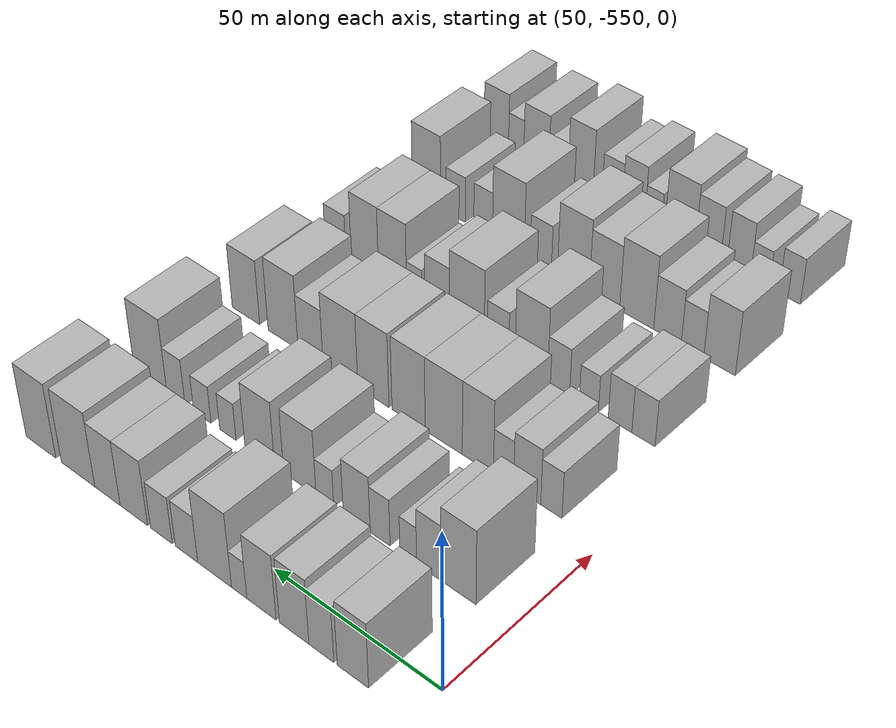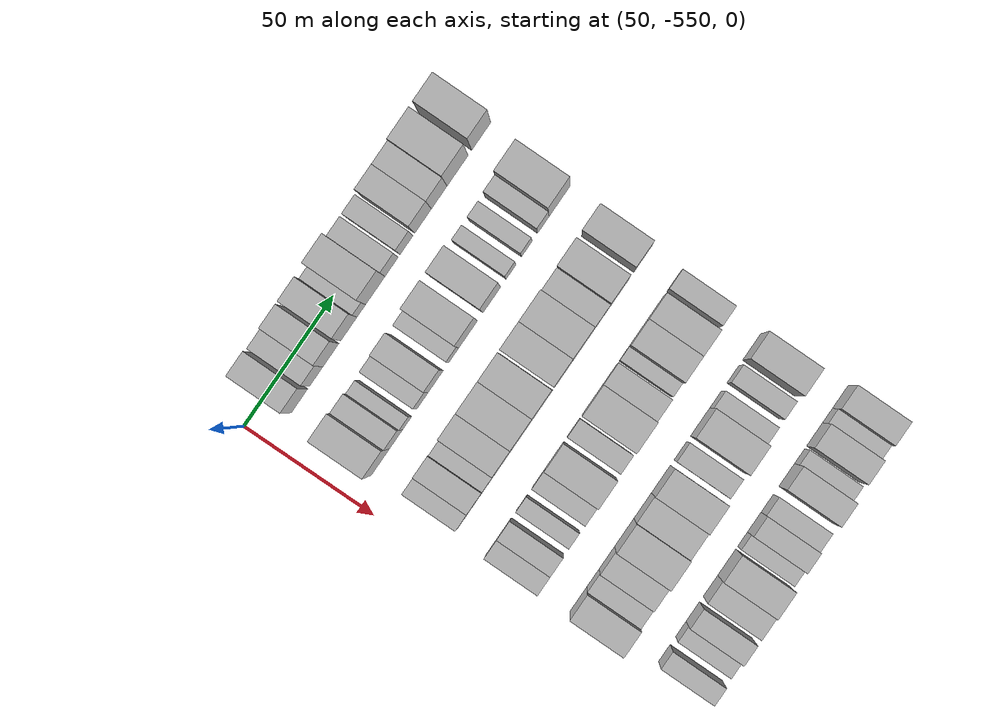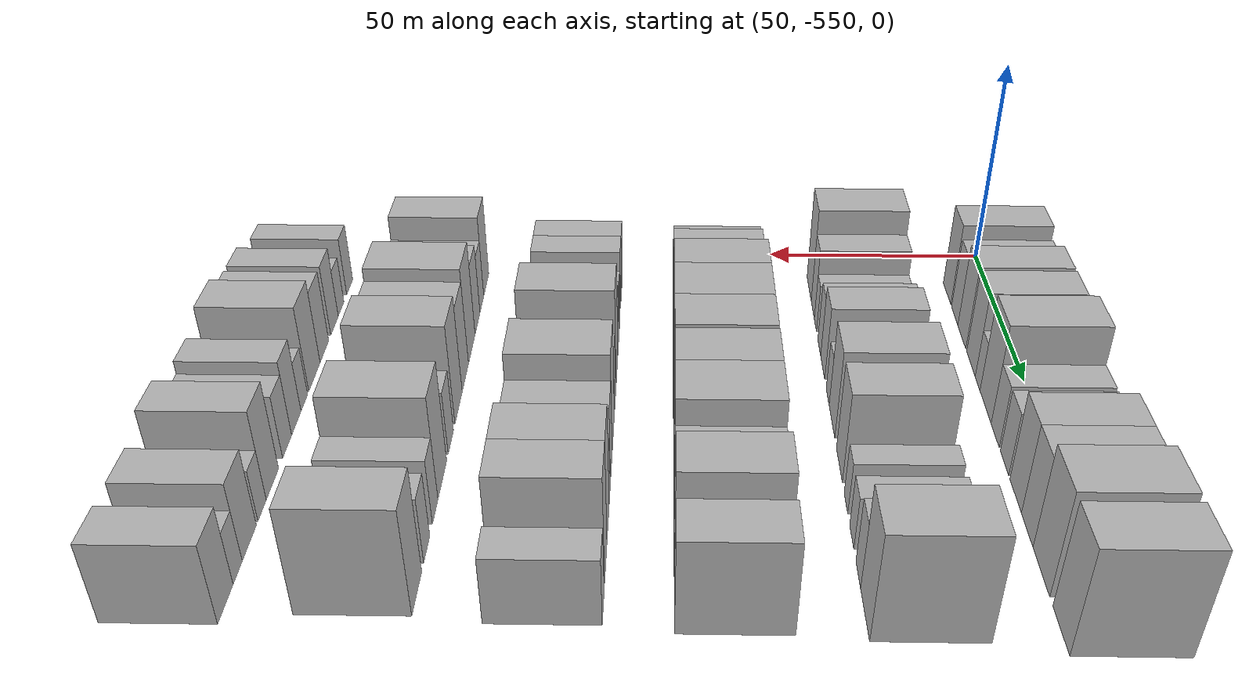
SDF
<sdf version="1.6">
 <world name="default">
  <model name="building_1">
   <static>1</static>
   <pose>50.0000 -533.4224 0 0.000000 0.000000 0.000000</pose>
   <link name="link">
    <pose>0 0 10.50 0 0 0</pose>
    <collision name="collision"><geometry><box><size>20.0000 9.1552 21.0000</size></box></geometry></collision>
    <visual name="visual">
     <cast_shadows>0</cast_shadows>
     <geometry><box><size>20.0000 9.1552 21.0000</size></box></geometry>
     <material>
      <script>
       <uri>model://HANNAS_wall/materials/scripts</uri>
       <uri>model://HANNAS_wall/materials/textures</uri>
       <name>vrc/HANNAS_wall</name>
      </script>
     </material>
    </visual>
   </link>
  </model>
  <model name="building_2">
   <static>1</static>
   <pose>50.0000 -524.1328 0 0.000000 0.000000 0.000000</pose>
   <link name="link">
    <pose>0 0 9.00 0 0 0</pose>
    <collision name="collision"><geometry><box><size>20.0000 7.4240 18.0000</size></box></geometry></collision>
    <visual name="visual">
     <cast_shadows>0</cast_shadows>
     <geometry><box><size>20.0000 7.4240 18.0000</size></box></geometry>
     <material>
      <script>
       <uri>model://HANNAS_wall/materials/scripts</uri>
       <uri>model://HANNAS_wall/materials/textures</uri>
       <name>vrc/HANNAS_wall</name>
      </script>
     </material>
    </visual>
   </link>
  </model>
  <model name="building_3">
   <static>1</static>
   <pose>50.0000 -515.9479 0 0.000000 0.000000 0.000000</pose>
   <link name="link">
    <pose>0 0 10.50 0 0 0</pose>
    <collision name="collision"><geometry><box><size>20.0000 8.9457 21.0000</size></box></geometry></collision>
    <visual name="visual">
     <cast_shadows>0</cast_shadows>
     <geometry><box><size>20.0000 8.9457 21.0000</size></box></geometry>
     <material>
      <script>
       <uri>model://HANNAS_wall/materials/scripts</uri>
       <uri>model://HANNAS_wall/materials/textures</uri>
       <name>vrc/HANNAS_wall</name>
      </script>
     </material>
    </visual>
   </link>
  </model>
  <model name="building_4">
   <static>1</static>
   <pose>50.0000 -505.9458 0 0.000000 0.000000 0.000000</pose>
   <link name="link">
    <pose>0 0 10.50 0 0 0</pose>
    <collision name="collision"><geometry><box><size>20.0000 9.0585 21.0000</size></box></geometry></collision>
    <visual name="visual">
     <cast_shadows>0</cast_shadows>
     <geometry><box><size>20.0000 9.0585 21.0000</size></box></geometry>
     <material>
      <script>
       <uri>model://HANNAS_wall/materials/scripts</uri>
       <uri>model://HANNAS_wall/materials/textures</uri>
       <name>vrc/HANNAS_wall</name>
      </script>
     </material>
    </visual>
   </link>
  </model>
  <model name="building_5">
   <static>1</static>
   <pose>50.0000 -499.0077 0 0.000000 0.000000 0.000000</pose>
   <link name="link">
    <pose>0 0 6.00 0 0 0</pose>
    <collision name="collision"><geometry><box><size>20.0000 4.8177 12.0000</size></box></geometry></collision>
    <visual name="visual">
     <cast_shadows>0</cast_shadows>
     <geometry><box><size>20.0000 4.8177 12.0000</size></box></geometry>
     <material>
      <script>
       <uri>model://HANNAS_wall/materials/scripts</uri>
       <uri>model://HANNAS_wall/materials/textures</uri>
       <name>vrc/HANNAS_wall</name>
      </script>
     </material>
    </visual>
   </link>
  </model>
  <model name="building_6">
   <static>1</static>
   <pose>50.0000 -491.1969 0 0.000000 0.000000 0.000000</pose>
   <link name="link">
    <pose>0 0 12.00 0 0 0</pose>
    <collision name="collision"><geometry><box><size>20.0000 10.8040 24.0000</size></box></geometry></collision>
    <visual name="visual">
     <cast_shadows>0</cast_shadows>
     <geometry><box><size>20.0000 10.8040 24.0000</size></box></geometry>
     <material>
      <script>
       <uri>model://HANNAS_wall/materials/scripts</uri>
       <uri>model://HANNAS_wall/materials/textures</uri>
       <name>vrc/HANNAS_wall</name>
      </script>
     </material>
    </visual>
   </link>
  </model>
  <model name="building_7">
   <static>1</static>
   <pose>50.0000 -482.1274 0 0.000000 0.000000 0.000000</pose>
   <link name="link">
    <pose>0 0 7.50 0 0 0</pose>
    <collision name="collision"><geometry><box><size>20.0000 7.3349 15.0000</size></box></geometry></collision>
    <visual name="visual">
     <cast_shadows>0</cast_shadows>
     <geometry><box><size>20.0000 7.3349 15.0000</size></box></geometry>
     <material>
      <script>
       <uri>model://HANNAS_wall/materials/scripts</uri>
       <uri>model://HANNAS_wall/materials/textures</uri>
       <name>vrc/HANNAS_wall</name>
      </script>
     </material>
    </visual>
   </link>
  </model>
  <model name="building_8">
   <static>1</static>
   <pose>50.0000 -473.8751 0 0.000000 0.000000 0.000000</pose>
   <link name="link">
    <pose>0 0 7.50 0 0 0</pose>
    <collision name="collision"><geometry><box><size>20.0000 7.1698 15.0000</size></box></geometry></collision>
    <visual name="visual">
     <cast_shadows>0</cast_shadows>
     <geometry><box><size>20.0000 7.1698 15.0000</size></box></geometry>
     <material>
      <script>
       <uri>model://HANNAS_wall/materials/scripts</uri>
       <uri>model://HANNAS_wall/materials/textures</uri>
       <name>vrc/HANNAS_wall</name>
      </script>
     </material>
    </visual>
   </link>
  </model>
  <model name="building_9">
   <static>1</static>
   <pose>50.0000 -464.6451 0 0.000000 0.000000 0.000000</pose>
   <link name="link">
    <pose>0 0 10.50 0 0 0</pose>
    <collision name="collision"><geometry><box><size>20.0000 9.2903 21.0000</size></box></geometry></collision>
    <visual name="visual">
     <cast_shadows>0</cast_shadows>
     <geometry><box><size>20.0000 9.2903 21.0000</size></box></geometry>
     <material>
      <script>
       <uri>model://HANNAS_wall/materials/scripts</uri>
       <uri>model://HANNAS_wall/materials/textures</uri>
       <name>vrc/HANNAS_wall</name>
      </script>
     </material>
    </visual>
   </link>
  </model>
  <model name="building_10">
   <static>1</static>
   <pose>50.0000 -455.6363 0 0.000000 0.000000 0.000000</pose>
   <link name="link">
    <pose>0 0 10.50 0 0 0</pose>
    <collision name="collision"><geometry><box><size>20.0000 8.7274 21.0000</size></box></geometry></collision>
    <visual name="visual">
     <cast_shadows>0</cast_shadows>
     <geometry><box><size>20.0000 8.7274 21.0000</size></box></geometry>
     <material>
      <script>
       <uri>model://HANNAS_wall/materials/scripts</uri>
       <uri>model://HANNAS_wall/materials/textures</uri>
       <name>vrc/HANNAS_wall</name>
      </script>
     </material>
    </visual>
   </link>
  </model>
  <model name="building_11">
   <static>1</static>
   <pose>50.0000 -445.4028 0 0.000000 0.000000 0.000000</pose>
   <link name="link">
    <pose>0 0 12.00 0 0 0</pose>
    <collision name="collision"><geometry><box><size>20.0000 11.7396 24.0000</size></box></geometry></collision>
    <visual name="visual">
     <cast_shadows>0</cast_shadows>
     <geometry><box><size>20.0000 11.7396 24.0000</size></box></geometry>
     <material>
      <script>
       <uri>model://HANNAS_wall/materials/scripts</uri>
       <uri>model://HANNAS_wall/materials/textures</uri>
       <name>vrc/HANNAS_wall</name>
      </script>
     </material>
    </visual>
   </link>
  </model>
  <model name="building_12">
   <static>1</static>
   <pose>50.0000 -432.2128 0 0.000000 0.000000 0.000000</pose>
   <link name="link">
    <pose>0 0 12.00 0 0 0</pose>
    <collision name="collision"><geometry><box><size>20.0000 10.6403 24.0000</size></box></geometry></collision>
    <visual name="visual">
     <cast_shadows>0</cast_shadows>
     <geometry><box><size>20.0000 10.6403 24.0000</size></box></geometry>
     <material>
      <script>
       <uri>model://HANNAS_wall/materials/scripts</uri>
       <uri>model://HANNAS_wall/materials/textures</uri>
       <name>vrc/HANNAS_wall</name>
      </script>
     </material>
    </visual>
   </link>
  </model>
  <model name="building_122">
   <static>1</static>
   <pose>82.0000 -534.8727 0 0.000000 0.000000 0.000000</pose>
   <link name="link">
    <pose>0 0 12.00 0 0 0</pose>
    <collision name="collision"><geometry><box><size>20.0000 10.2545 24.0000</size></box></geometry></collision>
    <visual name="visual">
     <cast_shadows>0</cast_shadows>
     <geometry><box><size>20.0000 10.2545 24.0000</size></box></geometry>
     <material>
      <script>
       <uri>model://HANNAS_wall/materials/scripts</uri>
       <uri>model://HANNAS_wall/materials/textures</uri>
       <name>vrc/HANNAS_wall</name>
      </script>
     </material>
    </visual>
   </link>
  </model>
  <model name="building_123">
   <static>1</static>
   <pose>82.0000 -526.1125 0 0.000000 0.000000 0.000000</pose>
   <link name="link">
    <pose>0 0 9.00 0 0 0</pose>
    <collision name="collision"><geometry><box><size>20.0000 7.2659 18.0000</size></box></geometry></collision>
    <visual name="visual">
     <cast_shadows>0</cast_shadows>
     <geometry><box><size>20.0000 7.2659 18.0000</size></box></geometry>
     <material>
      <script>
       <uri>model://HANNAS_wall/materials/scripts</uri>
       <uri>model://HANNAS_wall/materials/textures</uri>
       <name>vrc/HANNAS_wall</name>
      </script>
     </material>
    </visual>
   </link>
  </model>
  <model name="building_124">
   <static>1</static>
   <pose>82.0000 -519.9612 0 0.000000 0.000000 0.000000</pose>
   <link name="link">
    <pose>0 0 6.00 0 0 0</pose>
    <collision name="collision"><geometry><box><size>20.0000 5.0367 12.0000</size></box></geometry></collision>
    <visual name="visual">
     <cast_shadows>0</cast_shadows>
     <geometry><box><size>20.0000 5.0367 12.0000</size></box></geometry>
     <material>
      <script>
       <uri>model://HANNAS_wall/materials/scripts</uri>
       <uri>model://HANNAS_wall/materials/textures</uri>
       <name>vrc/HANNAS_wall</name>
      </script>
     </material>
    </visual>
   </link>
  </model>
  <model name="building_125">
   <static>1</static>
   <pose>82.0000 -511.3782 0 0.000000 0.000000 0.000000</pose>
   <link name="link">
    <pose>0 0 7.50 0 0 0</pose>
    <collision name="collision"><geometry><box><size>20.0000 6.1293 15.0000</size></box></geometry></collision>
    <visual name="visual">
     <cast_shadows>0</cast_shadows>
     <geometry><box><size>20.0000 6.1293 15.0000</size></box></geometry>
     <material>
      <script>
       <uri>model://HANNAS_wall/materials/scripts</uri>
       <uri>model://HANNAS_wall/materials/textures</uri>
       <name>vrc/HANNAS_wall</name>
      </script>
     </material>
    </visual>
   </link>
  </model>
  <model name="building_126">
   <static>1</static>
   <pose>82.0000 -504.1003 0 0.000000 0.000000 0.000000</pose>
   <link name="link">
    <pose>0 0 9.00 0 0 0</pose>
    <collision name="collision"><geometry><box><size>20.0000 8.4265 18.0000</size></box></geometry></collision>
    <visual name="visual">
     <cast_shadows>0</cast_shadows>
     <geometry><box><size>20.0000 8.4265 18.0000</size></box></geometry>
     <material>
      <script>
       <uri>model://HANNAS_wall/materials/scripts</uri>
       <uri>model://HANNAS_wall/materials/textures</uri>
       <name>vrc/HANNAS_wall</name>
      </script>
     </material>
    </visual>
   </link>
  </model>
  <model name="building_127">
   <static>1</static>
   <pose>82.0000 -494.0744 0 0.000000 0.000000 0.000000</pose>
   <link name="link">
    <pose>0 0 6.00 0 0 0</pose>
    <collision name="collision"><geometry><box><size>20.0000 5.6252 12.0000</size></box></geometry></collision>
    <visual name="visual">
     <cast_shadows>0</cast_shadows>
     <geometry><box><size>20.0000 5.6252 12.0000</size></box></geometry>
     <material>
      <script>
       <uri>model://HANNAS_wall/materials/scripts</uri>
       <uri>model://HANNAS_wall/materials/textures</uri>
       <name>vrc/HANNAS_wall</name>
      </script>
     </material>
    </visual>
   </link>
  </model>
  <model name="building_128">
   <static>1</static>
   <pose>82.0000 -486.0178 0 0.000000 0.000000 0.000000</pose>
   <link name="link">
    <pose>0 0 10.50 0 0 0</pose>
    <collision name="collision"><geometry><box><size>20.0000 10.4880 21.0000</size></box></geometry></collision>
    <visual name="visual">
     <cast_shadows>0</cast_shadows>
     <geometry><box><size>20.0000 10.4880 21.0000</size></box></geometry>
     <material>
      <script>
       <uri>model://HANNAS_wall/materials/scripts</uri>
       <uri>model://HANNAS_wall/materials/textures</uri>
       <name>vrc/HANNAS_wall</name>
      </script>
     </material>
    </visual>
   </link>
  </model>
  <model name="building_129">
   <static>1</static>
   <pose>82.0000 -472.8337 0 0.000000 0.000000 0.000000</pose>
   <link name="link">
    <pose>0 0 10.50 0 0 0</pose>
    <collision name="collision"><geometry><box><size>20.0000 9.8802 21.0000</size></box></geometry></collision>
    <visual name="visual">
     <cast_shadows>0</cast_shadows>
     <geometry><box><size>20.0000 9.8802 21.0000</size></box></geometry>
     <material>
      <script>
       <uri>model://HANNAS_wall/materials/scripts</uri>
       <uri>model://HANNAS_wall/materials/textures</uri>
       <name>vrc/HANNAS_wall</name>
      </script>
     </material>
    </visual>
   </link>
  </model>
  <model name="building_130">
   <static>1</static>
   <pose>82.0000 -462.1085 0 0.000000 0.000000 0.000000</pose>
   <link name="link">
    <pose>0 0 6.00 0 0 0</pose>
    <collision name="collision"><geometry><box><size>20.0000 5.5703 12.0000</size></box></geometry></collision>
    <visual name="visual">
     <cast_shadows>0</cast_shadows>
     <geometry><box><size>20.0000 5.5703 12.0000</size></box></geometry>
     <material>
      <script>
       <uri>model://HANNAS_wall/materials/scripts</uri>
       <uri>model://HANNAS_wall/materials/textures</uri>
       <name>vrc/HANNAS_wall</name>
      </script>
     </material>
    </visual>
   </link>
  </model>
  <model name="building_131">
   <static>1</static>
   <pose>82.0000 -453.3278 0 0.000000 0.000000 0.000000</pose>
   <link name="link">
    <pose>0 0 6.00 0 0 0</pose>
    <collision name="collision"><geometry><box><size>20.0000 5.9911 12.0000</size></box></geometry></collision>
    <visual name="visual">
     <cast_shadows>0</cast_shadows>
     <geometry><box><size>20.0000 5.9911 12.0000</size></box></geometry>
     <material>
      <script>
       <uri>model://HANNAS_wall/materials/scripts</uri>
       <uri>model://HANNAS_wall/materials/textures</uri>
       <name>vrc/HANNAS_wall</name>
      </script>
     </material>
    </visual>
   </link>
  </model>
  <model name="building_132">
   <static>1</static>
   <pose>82.0000 -444.1454 0 0.000000 0.000000 0.000000</pose>
   <link name="link">
    <pose>0 0 7.50 0 0 0</pose>
    <collision name="collision"><geometry><box><size>20.0000 6.3737 15.0000</size></box></geometry></collision>
    <visual name="visual">
     <cast_shadows>0</cast_shadows>
     <geometry><box><size>20.0000 6.3737 15.0000</size></box></geometry>
     <material>
      <script>
       <uri>model://HANNAS_wall/materials/scripts</uri>
       <uri>model://HANNAS_wall/materials/textures</uri>
       <name>vrc/HANNAS_wall</name>
      </script>
     </material>
    </visual>
   </link>
  </model>
  <model name="building_133">
   <static>1</static>
   <pose>82.0000 -435.1481 0 0.000000 0.000000 0.000000</pose>
   <link name="link">
    <pose>0 0 12.00 0 0 0</pose>
    <collision name="collision"><geometry><box><size>20.0000 11.6207 24.0000</size></box></geometry></collision>
    <visual name="visual">
     <cast_shadows>0</cast_shadows>
     <geometry><box><size>20.0000 11.6207 24.0000</size></box></geometry>
     <material>
      <script>
       <uri>model://HANNAS_wall/materials/scripts</uri>
       <uri>model://HANNAS_wall/materials/textures</uri>
       <name>vrc/HANNAS_wall</name>
      </script>
     </material>
    </visual>
   </link>
  </model>
  <model name="building_242">
   <static>1</static>
   <pose>114.0000 -534.8500 0 0.000000 0.000000 0.000000</pose>
   <link name="link">
    <pose>0 0 7.50 0 0 0</pose>
    <collision name="collision"><geometry><box><size>20.0000 6.3000 15.0000</size></box></geometry></collision>
    <visual name="visual">
     <cast_shadows>0</cast_shadows>
     <geometry><box><size>20.0000 6.3000 15.0000</size></box></geometry>
     <material>
      <script>
       <uri>model://HANNAS_wall/materials/scripts</uri>
       <uri>model://HANNAS_wall/materials/textures</uri>
       <name>vrc/HANNAS_wall</name>
      </script>
     </material>
    </visual>
   </link>
  </model>
  <model name="building_243">
   <static>1</static>
   <pose>114.0000 -527.6323 0 0.000000 0.000000 0.000000</pose>
   <link name="link">
    <pose>0 0 9.00 0 0 0</pose>
    <collision name="collision"><geometry><box><size>20.0000 8.1355 18.0000</size></box></geometry></collision>
    <visual name="visual">
     <cast_shadows>0</cast_shadows>
     <geometry><box><size>20.0000 8.1355 18.0000</size></box></geometry>
     <material>
      <script>
       <uri>model://HANNAS_wall/materials/scripts</uri>
       <uri>model://HANNAS_wall/materials/textures</uri>
       <name>vrc/HANNAS_wall</name>
      </script>
     </material>
    </visual>
   </link>
  </model>
  <model name="building_244">
   <static>1</static>
   <pose>114.0000 -520.5012 0 0.000000 0.000000 0.000000</pose>
   <link name="link">
    <pose>0 0 7.50 0 0 0</pose>
    <collision name="collision"><geometry><box><size>20.0000 6.1267 15.0000</size></box></geometry></collision>
    <visual name="visual">
     <cast_shadows>0</cast_shadows>
     <geometry><box><size>20.0000 6.1267 15.0000</size></box></geometry>
     <material>
      <script>
       <uri>model://HANNAS_wall/materials/scripts</uri>
       <uri>model://HANNAS_wall/materials/textures</uri>
       <name>vrc/HANNAS_wall</name>
      </script>
     </material>
    </visual>
   </link>
  </model>
  <model name="building_245">
   <static>1</static>
   <pose>114.0000 -512.6244 0 0.000000 0.000000 0.000000</pose>
   <link name="link">
    <pose>0 0 12.00 0 0 0</pose>
    <collision name="collision"><geometry><box><size>20.0000 9.6268 24.0000</size></box></geometry></collision>
    <visual name="visual">
     <cast_shadows>0</cast_shadows>
     <geometry><box><size>20.0000 9.6268 24.0000</size></box></geometry>
     <material>
      <script>
       <uri>model://HANNAS_wall/materials/scripts</uri>
       <uri>model://HANNAS_wall/materials/textures</uri>
       <name>vrc/HANNAS_wall</name>
      </script>
     </material>
    </visual>
   </link>
  </model>
  <model name="building_246">
   <static>1</static>
   <pose>114.0000 -501.9452 0 0.000000 0.000000 0.000000</pose>
   <link name="link">
    <pose>0 0 12.00 0 0 0</pose>
    <collision name="collision"><geometry><box><size>20.0000 11.7315 24.0000</size></box></geometry></collision>
    <visual name="visual">
     <cast_shadows>0</cast_shadows>
     <geometry><box><size>20.0000 11.7315 24.0000</size></box></geometry>
     <material>
      <script>
       <uri>model://HANNAS_wall/materials/scripts</uri>
       <uri>model://HANNAS_wall/materials/textures</uri>
       <name>vrc/HANNAS_wall</name>
      </script>
     </material>
    </visual>
   </link>
  </model>
  <model name="building_247">
   <static>1</static>
   <pose>114.0000 -490.7230 0 0.000000 0.000000 0.000000</pose>
   <link name="link">
    <pose>0 0 12.00 0 0 0</pose>
    <collision name="collision"><geometry><box><size>20.0000 10.7128 24.0000</size></box></geometry></collision>
    <visual name="visual">
     <cast_shadows>0</cast_shadows>
     <geometry><box><size>20.0000 10.7128 24.0000</size></box></geometry>
     <material>
      <script>
       <uri>model://HANNAS_wall/materials/scripts</uri>
       <uri>model://HANNAS_wall/materials/textures</uri>
       <name>vrc/HANNAS_wall</name>
      </script>
     </material>
    </visual>
   </link>
  </model>
  <model name="building_248">
   <static>1</static>
   <pose>114.0000 -479.2172 0 0.000000 0.000000 0.000000</pose>
   <link name="link">
    <pose>0 0 12.00 0 0 0</pose>
    <collision name="collision"><geometry><box><size>20.0000 10.2990 24.0000</size></box></geometry></collision>
    <visual name="visual">
     <cast_shadows>0</cast_shadows>
     <geometry><box><size>20.0000 10.2990 24.0000</size></box></geometry>
     <material>
      <script>
       <uri>model://HANNAS_wall/materials/scripts</uri>
       <uri>model://HANNAS_wall/materials/textures</uri>
       <name>vrc/HANNAS_wall</name>
      </script>
     </material>
    </visual>
   </link>
  </model>
  <model name="building_249">
   <static>1</static>
   <pose>114.0000 -468.2061 0 0.000000 0.000000 0.000000</pose>
   <link name="link">
    <pose>0 0 12.00 0 0 0</pose>
    <collision name="collision"><geometry><box><size>20.0000 11.7231 24.0000</size></box></geometry></collision>
    <visual name="visual">
     <cast_shadows>0</cast_shadows>
     <geometry><box><size>20.0000 11.7231 24.0000</size></box></geometry>
     <material>
      <script>
       <uri>model://HANNAS_wall/materials/scripts</uri>
       <uri>model://HANNAS_wall/materials/textures</uri>
       <name>vrc/HANNAS_wall</name>
      </script>
     </material>
    </visual>
   </link>
  </model>
  <model name="building_250">
   <static>1</static>
   <pose>114.0000 -458.0367 0 0.000000 0.000000 0.000000</pose>
   <link name="link">
    <pose>0 0 9.00 0 0 0</pose>
    <collision name="collision"><geometry><box><size>20.0000 8.6156 18.0000</size></box></geometry></collision>
    <visual name="visual">
     <cast_shadows>0</cast_shadows>
     <geometry><box><size>20.0000 8.6156 18.0000</size></box></geometry>
     <material>
      <script>
       <uri>model://HANNAS_wall/materials/scripts</uri>
       <uri>model://HANNAS_wall/materials/textures</uri>
       <name>vrc/HANNAS_wall</name>
      </script>
     </material>
    </visual>
   </link>
  </model>
  <model name="building_251">
   <static>1</static>
   <pose>114.0000 -448.4883 0 0.000000 0.000000 0.000000</pose>
   <link name="link">
    <pose>0 0 12.00 0 0 0</pose>
    <collision name="collision"><geometry><box><size>20.0000 10.4812 24.0000</size></box></geometry></collision>
    <visual name="visual">
     <cast_shadows>0</cast_shadows>
     <geometry><box><size>20.0000 10.4812 24.0000</size></box></geometry>
     <material>
      <script>
       <uri>model://HANNAS_wall/materials/scripts</uri>
       <uri>model://HANNAS_wall/materials/textures</uri>
       <name>vrc/HANNAS_wall</name>
      </script>
     </material>
    </visual>
   </link>
  </model>
  <model name="building_252">
   <static>1</static>
   <pose>114.0000 -435.3264 0 0.000000 0.000000 0.000000</pose>
   <link name="link">
    <pose>0 0 10.50 0 0 0</pose>
    <collision name="collision"><geometry><box><size>20.0000 9.8426 21.0000</size></box></geometry></collision>
    <visual name="visual">
     <cast_shadows>0</cast_shadows>
     <geometry><box><size>20.0000 9.8426 21.0000</size></box></geometry>
     <material>
      <script>
       <uri>model://HANNAS_wall/materials/scripts</uri>
       <uri>model://HANNAS_wall/materials/textures</uri>
       <name>vrc/HANNAS_wall</name>
      </script>
     </material>
    </visual>
   </link>
  </model>
  <model name="building_360">
   <static>1</static>
   <pose>146.0000 -536.5453 0 0.000000 0.000000 0.000000</pose>
   <link name="link">
    <pose>0 0 7.50 0 0 0</pose>
    <collision name="collision"><geometry><box><size>20.0000 6.9094 15.0000</size></box></geometry></collision>
    <visual name="visual">
     <cast_shadows>0</cast_shadows>
     <geometry><box><size>20.0000 6.9094 15.0000</size></box></geometry>
     <material>
      <script>
       <uri>model://HANNAS_wall/materials/scripts</uri>
       <uri>model://HANNAS_wall/materials/textures</uri>
       <name>vrc/HANNAS_wall</name>
      </script>
     </material>
    </visual>
   </link>
  </model>
  <model name="building_361">
   <static>1</static>
   <pose>146.0000 -529.5158 0 0.000000 0.000000 0.000000</pose>
   <link name="link">
    <pose>0 0 7.50 0 0 0</pose>
    <collision name="collision"><geometry><box><size>20.0000 7.1495 15.0000</size></box></geometry></collision>
    <visual name="visual">
     <cast_shadows>0</cast_shadows>
     <geometry><box><size>20.0000 7.1495 15.0000</size></box></geometry>
     <material>
      <script>
       <uri>model://HANNAS_wall/materials/scripts</uri>
       <uri>model://HANNAS_wall/materials/textures</uri>
       <name>vrc/HANNAS_wall</name>
      </script>
     </material>
    </visual>
   </link>
  </model>
  <model name="building_362">
   <static>1</static>
   <pose>146.0000 -520.0100 0 0.000000 0.000000 0.000000</pose>
   <link name="link">
    <pose>0 0 6.00 0 0 0</pose>
    <collision name="collision"><geometry><box><size>20.0000 5.8622 12.0000</size></box></geometry></collision>
    <visual name="visual">
     <cast_shadows>0</cast_shadows>
     <geometry><box><size>20.0000 5.8622 12.0000</size></box></geometry>
     <material>
      <script>
       <uri>model://HANNAS_wall/materials/scripts</uri>
       <uri>model://HANNAS_wall/materials/textures</uri>
       <name>vrc/HANNAS_wall</name>
      </script>
     </material>
    </visual>
   </link>
  </model>
  <model name="building_363">
   <static>1</static>
   <pose>146.0000 -510.6167 0 0.000000 0.000000 0.000000</pose>
   <link name="link">
    <pose>0 0 7.50 0 0 0</pose>
    <collision name="collision"><geometry><box><size>20.0000 6.9243 15.0000</size></box></geometry></collision>
    <visual name="visual">
     <cast_shadows>0</cast_shadows>
     <geometry><box><size>20.0000 6.9243 15.0000</size></box></geometry>
     <material>
      <script>
       <uri>model://HANNAS_wall/materials/scripts</uri>
       <uri>model://HANNAS_wall/materials/textures</uri>
       <name>vrc/HANNAS_wall</name>
      </script>
     </material>
    </visual>
   </link>
  </model>
  <model name="building_364">
   <static>1</static>
   <pose>146.0000 -501.9515 0 0.000000 0.000000 0.000000</pose>
   <link name="link">
    <pose>0 0 12.00 0 0 0</pose>
    <collision name="collision"><geometry><box><size>20.0000 10.4060 24.0000</size></box></geometry></collision>
    <visual name="visual">
     <cast_shadows>0</cast_shadows>
     <geometry><box><size>20.0000 10.4060 24.0000</size></box></geometry>
     <material>
      <script>
       <uri>model://HANNAS_wall/materials/scripts</uri>
       <uri>model://HANNAS_wall/materials/textures</uri>
       <name>vrc/HANNAS_wall</name>
      </script>
     </material>
    </visual>
   </link>
  </model>
  <model name="building_365">
   <static>1</static>
   <pose>146.0000 -491.2562 0 0.000000 0.000000 0.000000</pose>
   <link name="link">
    <pose>0 0 7.50 0 0 0</pose>
    <collision name="collision"><geometry><box><size>20.0000 6.9847 15.0000</size></box></geometry></collision>
    <visual name="visual">
     <cast_shadows>0</cast_shadows>
     <geometry><box><size>20.0000 6.9847 15.0000</size></box></geometry>
     <material>
      <script>
       <uri>model://HANNAS_wall/materials/scripts</uri>
       <uri>model://HANNAS_wall/materials/textures</uri>
       <name>vrc/HANNAS_wall</name>
      </script>
     </material>
    </visual>
   </link>
  </model>
  <model name="building_366">
   <static>1</static>
   <pose>146.0000 -480.9899 0 0.000000 0.000000 0.000000</pose>
   <link name="link">
    <pose>0 0 12.00 0 0 0</pose>
    <collision name="collision"><geometry><box><size>20.0000 11.5481 24.0000</size></box></geometry></collision>
    <visual name="visual">
     <cast_shadows>0</cast_shadows>
     <geometry><box><size>20.0000 11.5481 24.0000</size></box></geometry>
     <material>
      <script>
       <uri>model://HANNAS_wall/materials/scripts</uri>
       <uri>model://HANNAS_wall/materials/textures</uri>
       <name>vrc/HANNAS_wall</name>
      </script>
     </material>
    </visual>
   </link>
  </model>
  <model name="building_367">
   <static>1</static>
   <pose>146.0000 -471.0861 0 0.000000 0.000000 0.000000</pose>
   <link name="link">
    <pose>0 0 9.00 0 0 0</pose>
    <collision name="collision"><geometry><box><size>20.0000 8.2594 18.0000</size></box></geometry></collision>
    <visual name="visual">
     <cast_shadows>0</cast_shadows>
     <geometry><box><size>20.0000 8.2594 18.0000</size></box></geometry>
     <material>
      <script>
       <uri>model://HANNAS_wall/materials/scripts</uri>
       <uri>model://HANNAS_wall/materials/textures</uri>
       <name>vrc/HANNAS_wall</name>
      </script>
     </material>
    </visual>
   </link>
  </model>
  <model name="building_368">
   <static>1</static>
   <pose>146.0000 -463.3602 0 0.000000 0.000000 0.000000</pose>
   <link name="link">
    <pose>0 0 6.00 0 0 0</pose>
    <collision name="collision"><geometry><box><size>20.0000 5.1926 12.0000</size></box></geometry></collision>
    <visual name="visual">
     <cast_shadows>0</cast_shadows>
     <geometry><box><size>20.0000 5.1926 12.0000</size></box></geometry>
     <material>
      <script>
       <uri>model://HANNAS_wall/materials/scripts</uri>
       <uri>model://HANNAS_wall/materials/textures</uri>
       <name>vrc/HANNAS_wall</name>
      </script>
     </material>
    </visual>
   </link>
  </model>
  <model name="building_369">
   <static>1</static>
   <pose>146.0000 -455.9004 0 0.000000 0.000000 0.000000</pose>
   <link name="link">
    <pose>0 0 12.00 0 0 0</pose>
    <collision name="collision"><geometry><box><size>20.0000 9.7270 24.0000</size></box></geometry></collision>
    <visual name="visual">
     <cast_shadows>0</cast_shadows>
     <geometry><box><size>20.0000 9.7270 24.0000</size></box></geometry>
     <material>
      <script>
       <uri>model://HANNAS_wall/materials/scripts</uri>
       <uri>model://HANNAS_wall/materials/textures</uri>
       <name>vrc/HANNAS_wall</name>
      </script>
     </material>
    </visual>
   </link>
  </model>
  <model name="building_370">
   <static>1</static>
   <pose>146.0000 -446.2291 0 0.000000 0.000000 0.000000</pose>
   <link name="link">
    <pose>0 0 12.00 0 0 0</pose>
    <collision name="collision"><geometry><box><size>20.0000 9.6155 24.0000</size></box></geometry></collision>
    <visual name="visual">
     <cast_shadows>0</cast_shadows>
     <geometry><box><size>20.0000 9.6155 24.0000</size></box></geometry>
     <material>
      <script>
       <uri>model://HANNAS_wall/materials/scripts</uri>
       <uri>model://HANNAS_wall/materials/textures</uri>
       <name>vrc/HANNAS_wall</name>
      </script>
     </material>
    </visual>
   </link>
  </model>
  <model name="building_371">
   <static>1</static>
   <pose>146.0000 -435.7309 0 0.000000 0.000000 0.000000</pose>
   <link name="link">
    <pose>0 0 7.50 0 0 0</pose>
    <collision name="collision"><geometry><box><size>20.0000 7.3810 15.0000</size></box></geometry></collision>
    <visual name="visual">
     <cast_shadows>0</cast_shadows>
     <geometry><box><size>20.0000 7.3810 15.0000</size></box></geometry>
     <material>
      <script>
       <uri>model://HANNAS_wall/materials/scripts</uri>
       <uri>model://HANNAS_wall/materials/textures</uri>
       <name>vrc/HANNAS_wall</name>
      </script>
     </material>
    </visual>
   </link>
  </model>
  <model name="building_465">
   <static>1</static>
   <pose>178.0000 -535.2208 0 0.000000 0.000000 0.000000</pose>
   <link name="link">
    <pose>0 0 10.50 0 0 0</pose>
    <collision name="collision"><geometry><box><size>20.0000 9.5584 21.0000</size></box></geometry></collision>
    <visual name="visual">
     <cast_shadows>0</cast_shadows>
     <geometry><box><size>20.0000 9.5584 21.0000</size></box></geometry>
     <material>
      <script>
       <uri>model://HANNAS_wall/materials/scripts</uri>
       <uri>model://HANNAS_wall/materials/textures</uri>
       <name>vrc/HANNAS_wall</name>
      </script>
     </material>
    </visual>
   </link>
  </model>
  <model name="building_466">
   <static>1</static>
   <pose>178.0000 -526.9873 0 0.000000 0.000000 0.000000</pose>
   <link name="link">
    <pose>0 0 7.50 0 0 0</pose>
    <collision name="collision"><geometry><box><size>20.0000 6.9086 15.0000</size></box></geometry></collision>
    <visual name="visual">
     <cast_shadows>0</cast_shadows>
     <geometry><box><size>20.0000 6.9086 15.0000</size></box></geometry>
     <material>
      <script>
       <uri>model://HANNAS_wall/materials/scripts</uri>
       <uri>model://HANNAS_wall/materials/textures</uri>
       <name>vrc/HANNAS_wall</name>
      </script>
     </material>
    </visual>
   </link>
  </model>
  <model name="building_467">
   <static>1</static>
   <pose>178.0000 -519.2528 0 0.000000 0.000000 0.000000</pose>
   <link name="link">
    <pose>0 0 9.00 0 0 0</pose>
    <collision name="collision"><geometry><box><size>20.0000 8.5603 18.0000</size></box></geometry></collision>
    <visual name="visual">
     <cast_shadows>0</cast_shadows>
     <geometry><box><size>20.0000 8.5603 18.0000</size></box></geometry>
     <material>
      <script>
       <uri>model://HANNAS_wall/materials/scripts</uri>
       <uri>model://HANNAS_wall/materials/textures</uri>
       <name>vrc/HANNAS_wall</name>
      </script>
     </material>
    </visual>
   </link>
  </model>
  <model name="building_468">
   <static>1</static>
   <pose>178.0000 -509.5565 0 0.000000 0.000000 0.000000</pose>
   <link name="link">
    <pose>0 0 12.00 0 0 0</pose>
    <collision name="collision"><geometry><box><size>20.0000 10.8325 24.0000</size></box></geometry></collision>
    <visual name="visual">
     <cast_shadows>0</cast_shadows>
     <geometry><box><size>20.0000 10.8325 24.0000</size></box></geometry>
     <material>
      <script>
       <uri>model://HANNAS_wall/materials/scripts</uri>
       <uri>model://HANNAS_wall/materials/textures</uri>
       <name>vrc/HANNAS_wall</name>
      </script>
     </material>
    </visual>
   </link>
  </model>
  <model name="building_469">
   <static>1</static>
   <pose>178.0000 -499.2455 0 0.000000 0.000000 0.000000</pose>
   <link name="link">
    <pose>0 0 10.50 0 0 0</pose>
    <collision name="collision"><geometry><box><size>20.0000 9.7895 21.0000</size></box></geometry></collision>
    <visual name="visual">
     <cast_shadows>0</cast_shadows>
     <geometry><box><size>20.0000 9.7895 21.0000</size></box></geometry>
     <material>
      <script>
       <uri>model://HANNAS_wall/materials/scripts</uri>
       <uri>model://HANNAS_wall/materials/textures</uri>
       <name>vrc/HANNAS_wall</name>
      </script>
     </material>
    </visual>
   </link>
  </model>
  <model name="building_470">
   <static>1</static>
   <pose>178.0000 -489.0982 0 0.000000 0.000000 0.000000</pose>
   <link name="link">
    <pose>0 0 12.00 0 0 0</pose>
    <collision name="collision"><geometry><box><size>20.0000 10.5051 24.0000</size></box></geometry></collision>
    <visual name="visual">
     <cast_shadows>0</cast_shadows>
     <geometry><box><size>20.0000 10.5051 24.0000</size></box></geometry>
     <material>
      <script>
       <uri>model://HANNAS_wall/materials/scripts</uri>
       <uri>model://HANNAS_wall/materials/textures</uri>
       <name>vrc/HANNAS_wall</name>
      </script>
     </material>
    </visual>
   </link>
  </model>
  <model name="building_471">
   <static>1</static>
   <pose>178.0000 -478.2623 0 0.000000 0.000000 0.000000</pose>
   <link name="link">
    <pose>0 0 7.50 0 0 0</pose>
    <collision name="collision"><geometry><box><size>20.0000 7.1667 15.0000</size></box></geometry></collision>
    <visual name="visual">
     <cast_shadows>0</cast_shadows>
     <geometry><box><size>20.0000 7.1667 15.0000</size></box></geometry>
     <material>
      <script>
       <uri>model://HANNAS_wall/materials/scripts</uri>
       <uri>model://HANNAS_wall/materials/textures</uri>
       <name>vrc/HANNAS_wall</name>
      </script>
     </material>
    </visual>
   </link>
  </model>
  <model name="building_472">
   <static>1</static>
   <pose>178.0000 -467.2535 0 0.000000 0.000000 0.000000</pose>
   <link name="link">
    <pose>0 0 12.00 0 0 0</pose>
    <collision name="collision"><geometry><box><size>20.0000 10.8509 24.0000</size></box></geometry></collision>
    <visual name="visual">
     <cast_shadows>0</cast_shadows>
     <geometry><box><size>20.0000 10.8509 24.0000</size></box></geometry>
     <material>
      <script>
       <uri>model://HANNAS_wall/materials/scripts</uri>
       <uri>model://HANNAS_wall/materials/textures</uri>
       <name>vrc/HANNAS_wall</name>
      </script>
     </material>
    </visual>
   </link>
  </model>
  <model name="building_473">
   <static>1</static>
   <pose>178.0000 -458.5795 0 0.000000 0.000000 0.000000</pose>
   <link name="link">
    <pose>0 0 7.50 0 0 0</pose>
    <collision name="collision"><geometry><box><size>20.0000 6.4972 15.0000</size></box></geometry></collision>
    <visual name="visual">
     <cast_shadows>0</cast_shadows>
     <geometry><box><size>20.0000 6.4972 15.0000</size></box></geometry>
     <material>
      <script>
       <uri>model://HANNAS_wall/materials/scripts</uri>
       <uri>model://HANNAS_wall/materials/textures</uri>
       <name>vrc/HANNAS_wall</name>
      </script>
     </material>
    </visual>
   </link>
  </model>
  <model name="building_474">
   <static>1</static>
   <pose>178.0000 -448.9757 0 0.000000 0.000000 0.000000</pose>
   <link name="link">
    <pose>0 0 7.50 0 0 0</pose>
    <collision name="collision"><geometry><box><size>20.0000 6.7105 15.0000</size></box></geometry></collision>
    <visual name="visual">
     <cast_shadows>0</cast_shadows>
     <geometry><box><size>20.0000 6.7105 15.0000</size></box></geometry>
     <material>
      <script>
       <uri>model://HANNAS_wall/materials/scripts</uri>
       <uri>model://HANNAS_wall/materials/textures</uri>
       <name>vrc/HANNAS_wall</name>
      </script>
     </material>
    </visual>
   </link>
  </model>
  <model name="building_475">
   <static>1</static>
   <pose>178.0000 -438.5516 0 0.000000 0.000000 0.000000</pose>
   <link name="link">
    <pose>0 0 12.00 0 0 0</pose>
    <collision name="collision"><geometry><box><size>20.0000 10.1376 24.0000</size></box></geometry></collision>
    <visual name="visual">
     <cast_shadows>0</cast_shadows>
     <geometry><box><size>20.0000 10.1376 24.0000</size></box></geometry>
     <material>
      <script>
       <uri>model://HANNAS_wall/materials/scripts</uri>
       <uri>model://HANNAS_wall/materials/textures</uri>
       <name>vrc/HANNAS_wall</name>
      </script>
     </material>
    </visual>
   </link>
  </model>
  <model name="building_587">
   <static>1</static>
   <pose>210.0000 -533.7384 0 0.000000 0.000000 0.000000</pose>
   <link name="link">
    <pose>0 0 7.50 0 0 0</pose>
    <collision name="collision"><geometry><box><size>20.0000 6.5231 15.0000</size></box></geometry></collision>
    <visual name="visual">
     <cast_shadows>0</cast_shadows>
     <geometry><box><size>20.0000 6.5231 15.0000</size></box></geometry>
     <material>
      <script>
       <uri>model://HANNAS_wall/materials/scripts</uri>
       <uri>model://HANNAS_wall/materials/textures</uri>
       <name>vrc/HANNAS_wall</name>
      </script>
     </material>
    </visual>
   </link>
  </model>
  <model name="building_588">
   <static>1</static>
   <pose>210.0000 -524.5314 0 0.000000 0.000000 0.000000</pose>
   <link name="link">
    <pose>0 0 6.00 0 0 0</pose>
    <collision name="collision"><geometry><box><size>20.0000 5.8909 12.0000</size></box></geometry></collision>
    <visual name="visual">
     <cast_shadows>0</cast_shadows>
     <geometry><box><size>20.0000 5.8909 12.0000</size></box></geometry>
     <material>
      <script>
       <uri>model://HANNAS_wall/materials/scripts</uri>
       <uri>model://HANNAS_wall/materials/textures</uri>
       <name>vrc/HANNAS_wall</name>
      </script>
     </material>
    </visual>
   </link>
  </model>
  <model name="building_589">
   <static>1</static>
   <pose>210.0000 -517.8468 0 0.000000 0.000000 0.000000</pose>
   <link name="link">
    <pose>0 0 9.00 0 0 0</pose>
    <collision name="collision"><geometry><box><size>20.0000 7.4784 18.0000</size></box></geometry></collision>
    <visual name="visual">
     <cast_shadows>0</cast_shadows>
     <geometry><box><size>20.0000 7.4784 18.0000</size></box></geometry>
     <material>
      <script>
       <uri>model://HANNAS_wall/materials/scripts</uri>
       <uri>model://HANNAS_wall/materials/textures</uri>
       <name>vrc/HANNAS_wall</name>
      </script>
     </material>
    </visual>
   </link>
  </model>
  <model name="building_590">
   <static>1</static>
   <pose>210.0000 -508.0400 0 0.000000 0.000000 0.000000</pose>
   <link name="link">
    <pose>0 0 9.00 0 0 0</pose>
    <collision name="collision"><geometry><box><size>20.0000 8.1351 18.0000</size></box></geometry></collision>
    <visual name="visual">
     <cast_shadows>0</cast_shadows>
     <geometry><box><size>20.0000 8.1351 18.0000</size></box></geometry>
     <material>
      <script>
       <uri>model://HANNAS_wall/materials/scripts</uri>
       <uri>model://HANNAS_wall/materials/textures</uri>
       <name>vrc/HANNAS_wall</name>
      </script>
     </material>
    </visual>
   </link>
  </model>
  <model name="building_591">
   <static>1</static>
   <pose>210.0000 -498.9523 0 0.000000 0.000000 0.000000</pose>
   <link name="link">
    <pose>0 0 10.50 0 0 0</pose>
    <collision name="collision"><geometry><box><size>20.0000 10.0404 21.0000</size></box></geometry></collision>
    <visual name="visual">
     <cast_shadows>0</cast_shadows>
     <geometry><box><size>20.0000 10.0404 21.0000</size></box></geometry>
     <material>
      <script>
       <uri>model://HANNAS_wall/materials/scripts</uri>
       <uri>model://HANNAS_wall/materials/textures</uri>
       <name>vrc/HANNAS_wall</name>
      </script>
     </material>
    </visual>
   </link>
  </model>
  <model name="building_592">
   <static>1</static>
   <pose>210.0000 -490.1529 0 0.000000 0.000000 0.000000</pose>
   <link name="link">
    <pose>0 0 6.00 0 0 0</pose>
    <collision name="collision"><geometry><box><size>20.0000 5.5584 12.0000</size></box></geometry></collision>
    <visual name="visual">
     <cast_shadows>0</cast_shadows>
     <geometry><box><size>20.0000 5.5584 12.0000</size></box></geometry>
     <material>
      <script>
       <uri>model://HANNAS_wall/materials/scripts</uri>
       <uri>model://HANNAS_wall/materials/textures</uri>
       <name>vrc/HANNAS_wall</name>
      </script>
     </material>
    </visual>
   </link>
  </model>
  <model name="building_593">
   <static>1</static>
   <pose>210.0000 -483.6123 0 0.000000 0.000000 0.000000</pose>
   <link name="link">
    <pose>0 0 9.00 0 0 0</pose>
    <collision name="collision"><geometry><box><size>20.0000 7.5228 18.0000</size></box></geometry></collision>
    <visual name="visual">
     <cast_shadows>0</cast_shadows>
     <geometry><box><size>20.0000 7.5228 18.0000</size></box></geometry>
     <material>
      <script>
       <uri>model://HANNAS_wall/materials/scripts</uri>
       <uri>model://HANNAS_wall/materials/textures</uri>
       <name>vrc/HANNAS_wall</name>
      </script>
     </material>
    </visual>
   </link>
  </model>
  <model name="building_594">
   <static>1</static>
   <pose>210.0000 -476.3789 0 0.000000 0.000000 0.000000</pose>
   <link name="link">
    <pose>0 0 7.50 0 0 0</pose>
    <collision name="collision"><geometry><box><size>20.0000 6.9442 15.0000</size></box></geometry></collision>
    <visual name="visual">
     <cast_shadows>0</cast_shadows>
     <geometry><box><size>20.0000 6.9442 15.0000</size></box></geometry>
     <material>
      <script>
       <uri>model://HANNAS_wall/materials/scripts</uri>
       <uri>model://HANNAS_wall/materials/textures</uri>
       <name>vrc/HANNAS_wall</name>
      </script>
     </material>
    </visual>
   </link>
  </model>
  <model name="building_595">
   <static>1</static>
   <pose>210.0000 -465.5258 0 0.000000 0.000000 0.000000</pose>
   <link name="link">
    <pose>0 0 10.50 0 0 0</pose>
    <collision name="collision"><geometry><box><size>20.0000 8.7619 21.0000</size></box></geometry></collision>
    <visual name="visual">
     <cast_shadows>0</cast_shadows>
     <geometry><box><size>20.0000 8.7619 21.0000</size></box></geometry>
     <material>
      <script>
       <uri>model://HANNAS_wall/materials/scripts</uri>
       <uri>model://HANNAS_wall/materials/textures</uri>
       <name>vrc/HANNAS_wall</name>
      </script>
     </material>
    </visual>
   </link>
  </model>
  <model name="building_596">
   <static>1</static>
   <pose>210.0000 -458.3197 0 0.000000 0.000000 0.000000</pose>
   <link name="link">
    <pose>0 0 6.00 0 0 0</pose>
    <collision name="collision"><geometry><box><size>20.0000 5.6502 12.0000</size></box></geometry></collision>
    <visual name="visual">
     <cast_shadows>0</cast_shadows>
     <geometry><box><size>20.0000 5.6502 12.0000</size></box></geometry>
     <material>
      <script>
       <uri>model://HANNAS_wall/materials/scripts</uri>
       <uri>model://HANNAS_wall/materials/textures</uri>
       <name>vrc/HANNAS_wall</name>
      </script>
     </material>
    </visual>
   </link>
  </model>
  <model name="building_597">
   <static>1</static>
   <pose>210.0000 -450.0189 0 0.000000 0.000000 0.000000</pose>
   <link name="link">
    <pose>0 0 9.00 0 0 0</pose>
    <collision name="collision"><geometry><box><size>20.0000 8.9515 18.0000</size></box></geometry></collision>
    <visual name="visual">
     <cast_shadows>0</cast_shadows>
     <geometry><box><size>20.0000 8.9515 18.0000</size></box></geometry>
     <material>
      <script>
       <uri>model://HANNAS_wall/materials/scripts</uri>
       <uri>model://HANNAS_wall/materials/textures</uri>
       <name>vrc/HANNAS_wall</name>
      </script>
     </material>
    </visual>
   </link>
  </model>
  <model name="building_598">
   <static>1</static>
   <pose>210.0000 -442.7990 0 0.000000 0.000000 0.000000</pose>
   <link name="link">
    <pose>0 0 6.00 0 0 0</pose>
    <collision name="collision"><geometry><box><size>20.0000 5.4882 12.0000</size></box></geometry></collision>
    <visual name="visual">
     <cast_shadows>0</cast_shadows>
     <geometry><box><size>20.0000 5.4882 12.0000</size></box></geometry>
     <material>
      <script>
       <uri>model://HANNAS_wall/materials/scripts</uri>
       <uri>model://HANNAS_wall/materials/textures</uri>
       <name>vrc/HANNAS_wall</name>
      </script>
     </material>
    </visual>
   </link>
  </model>
  <model name="building_599">
   <static>1</static>
   <pose>210.0000 -435.6150 0 0.000000 0.000000 0.000000</pose>
   <link name="link">
    <pose>0 0 9.00 0 0 0</pose>
    <collision name="collision"><geometry><box><size>20.0000 8.8799 18.0000</size></box></geometry></collision>
    <visual name="visual">
     <cast_shadows>0</cast_shadows>
     <geometry><box><size>20.0000 8.8799 18.0000</size></box></geometry>
     <material>
      <script>
       <uri>model://HANNAS_wall/materials/scripts</uri>
       <uri>model://HANNAS_wall/materials/textures</uri>
       <name>vrc/HANNAS_wall</name>
      </script>
     </material>
    </visual>
   </link>
  </model>
 </world>
</sdf>
